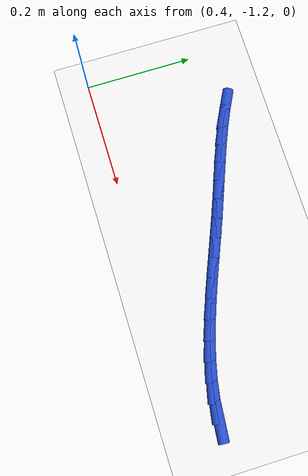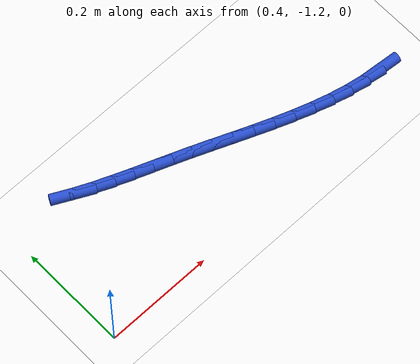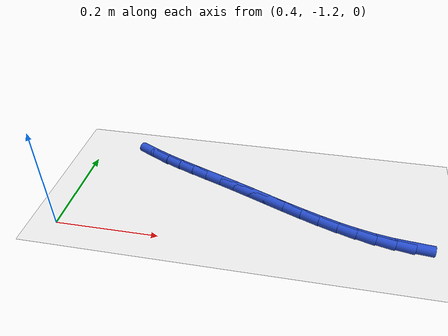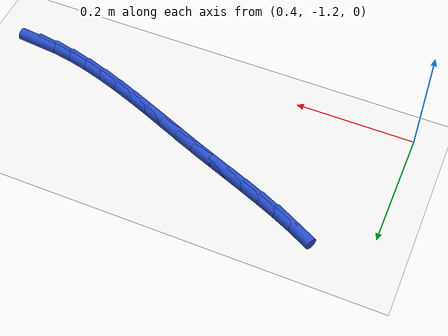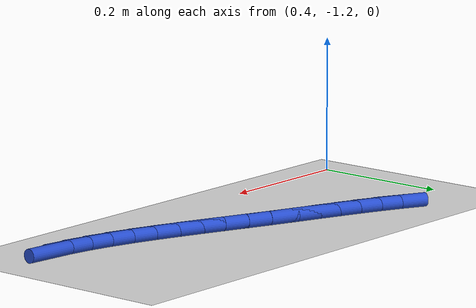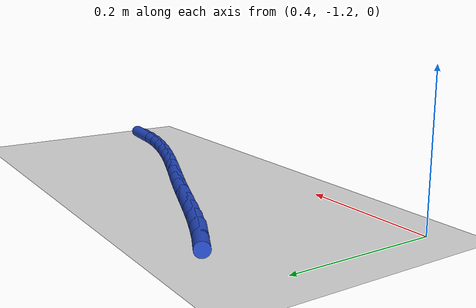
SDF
<sdf version="1.6">
 <world name="default">
  <model name="ground_plane">
   <static>1</static>
   <link name="link">
    <collision name="collision">
     <geometry><plane><normal>0 0 1</normal><size>100 100</size></plane></geometry>
     <surface><friction><ode><mu>100</mu><mu2>50</mu2></ode></friction></surface>
    </collision>
    <visual name="visual">
     <cast_shadows>0</cast_shadows>
     <geometry><plane><normal>0 0 1</normal><size>100 100</size></plane></geometry>
     <material>
      <script><uri>file://media/materials/scripts/gazebo.material</uri><name>Gazebo/WhiteGlow</name></script>
     </material>
    </visual>
   </link>
  </model>
  <model name="line">
   <link name="link_150">
    <pose>1.0516640370518295 -1.1515317887890502 0.01 0 1.57 -0.09297723242723342</pose>
    <collision name="collision">
     <geometry><cylinder><radius>0.01</radius><length>0.08</length></cylinder></geometry>
    </collision>
    <visual name="visual">
     <material>
      <script><name>Gazebo/Blue</name><uri>file://media/materials/scripts/gazebo.material</uri></script>
     </material>
     <geometry><cylinder><radius>0.01</radius><length>0.08</length></cylinder></geometry>
    </visual>
   </link>
   <link name="link_151">
    <pose>1.0192491957671876 -1.1485092317673014 0.01 0 1.57 -0.17097005044146746</pose>
    <collision name="collision">
     <geometry><cylinder><radius>0.01</radius><length>0.08</length></cylinder></geometry>
    </collision>
    <visual name="visual">
     <material>
      <script><name>Gazebo/Blue</name><uri>file://media/materials/scripts/gazebo.material</uri></script>
     </material>
     <geometry><cylinder><radius>0.01</radius><length>0.08</length></cylinder></geometry>
    </visual>
   </link>
   <link name="link_152">
    <pose>0.9862698554079243 -1.142815163217712 0.01 0 1.57 -0.23469139272830153</pose>
    <collision name="collision">
     <geometry><cylinder><radius>0.01</radius><length>0.08</length></cylinder></geometry>
    </collision>
    <visual name="visual">
     <material>
      <script><name>Gazebo/Blue</name><uri>file://media/materials/scripts/gazebo.material</uri></script>
     </material>
     <geometry><cylinder><radius>0.01</radius><length>0.08</length></cylinder></geometry>
    </visual>
   </link>
   <link name="link_153">
    <pose>0.9528266903518345 -1.134818988401021 0.01 0 1.57 -0.28566594127552614</pose>
    <collision name="collision">
     <geometry><cylinder><radius>0.01</radius><length>0.08</length></cylinder></geometry>
    </collision>
    <visual name="visual">
     <material>
      <script><name>Gazebo/Blue</name><uri>file://media/materials/scripts/gazebo.material</uri></script>
     </material>
     <geometry><cylinder><radius>0.01</radius><length>0.08</length></cylinder></geometry>
    </visual>
   </link>
   <link name="link_154">
    <pose>0.9190203749767144 -1.124890112577969 0.01 0 1.57 -0.3253365425913801</pose>
    <collision name="collision">
     <geometry><cylinder><radius>0.01</radius><length>0.08</length></cylinder></geometry>
    </collision>
    <visual name="visual">
     <material>
      <script><name>Gazebo/Blue</name><uri>file://media/materials/scripts/gazebo.material</uri></script>
     </material>
     <geometry><cylinder><radius>0.01</radius><length>0.08</length></cylinder></geometry>
    </visual>
   </link>
   <link name="link_155">
    <pose>0.8849515836603588 -1.1133979410092945 0.01 0 1.57 -0.35491281537799924</pose>
    <collision name="collision">
     <geometry><cylinder><radius>0.01</radius><length>0.08</length></cylinder></geometry>
    </collision>
    <visual name="visual">
     <material>
      <script><name>Gazebo/Blue</name><uri>file://media/materials/scripts/gazebo.material</uri></script>
     </material>
     <geometry><cylinder><radius>0.01</radius><length>0.08</length></cylinder></geometry>
    </visual>
   </link>
   <link name="link_156">
    <pose>0.8507209907805628 -1.1007118789557366 0.01 0 1.57 -0.37531343040777904</pose>
    <collision name="collision">
     <geometry><cylinder><radius>0.01</radius><length>0.08</length></cylinder></geometry>
    </collision>
    <visual name="visual">
     <material>
      <script><name>Gazebo/Blue</name><uri>file://media/materials/scripts/gazebo.material</uri></script>
     </material>
     <geometry><cylinder><radius>0.01</radius><length>0.08</length></cylinder></geometry>
    </visual>
   </link>
   <link name="link_157">
    <pose>0.8164292707151223 -1.0872013316780356 0.01 0 1.57 -0.3871520766410224</pose>
    <collision name="collision">
     <geometry><cylinder><radius>0.01</radius><length>0.08</length></cylinder></geometry>
    </collision>
    <visual name="visual">
     <material>
      <script><name>Gazebo/Blue</name><uri>file://media/materials/scripts/gazebo.material</uri></script>
     </material>
     <geometry><cylinder><radius>0.01</radius><length>0.08</length></cylinder></geometry>
    </visual>
   </link>
   <link name="link_158">
    <pose>0.7821770978418328 -1.0732357044369305 0.01 0 1.57 -0.39073748574353995</pose>
    <collision name="collision">
     <geometry><cylinder><radius>0.01</radius><length>0.08</length></cylinder></geometry>
    </collision>
    <visual name="visual">
     <material>
      <script><name>Gazebo/Blue</name><uri>file://media/materials/scripts/gazebo.material</uri></script>
     </material>
     <geometry><cylinder><radius>0.01</radius><length>0.08</length></cylinder></geometry>
    </visual>
   </link>
   <link name="link_159">
    <pose>0.7480651465384892 -1.0591844024931607 0.01 0 1.57 -0.38607157884977733</pose>
    <collision name="collision">
     <geometry><cylinder><radius>0.01</radius><length>0.08</length></cylinder></geometry>
    </collision>
    <visual name="visual">
     <material>
      <script><name>Gazebo/Blue</name><uri>file://media/materials/scripts/gazebo.material</uri></script>
     </material>
     <geometry><cylinder><radius>0.01</radius><length>0.08</length></cylinder></geometry>
    </visual>
   </link>
   <link name="link_160">
    <pose>0.7141940911828871 -1.0454168311074659 0.01 0 1.57 -0.3746275990224084</pose>
    <collision name="collision">
     <geometry><cylinder><radius>0.01</radius><length>0.08</length></cylinder></geometry>
    </collision>
    <visual name="visual">
     <material>
      <script><name>Gazebo/Blue</name><uri>file://media/materials/scripts/gazebo.material</uri></script>
     </material>
     <geometry><cylinder><radius>0.01</radius><length>0.08</length></cylinder></geometry>
    </visual>
   </link>
   <link name="link_161">
    <pose>0.6806659465416918 -1.0322336807271528 0.01 0 1.57 -0.3673178129201745</pose>
    <collision name="collision">
     <geometry><cylinder><radius>0.01</radius><length>0.08</length></cylinder></geometry>
    </collision>
    <visual name="visual">
     <material>
      <script><name>Gazebo/Blue</name><uri>file://media/materials/scripts/gazebo.material</uri></script>
     </material>
     <geometry><cylinder><radius>0.01</radius><length>0.08</length></cylinder></geometry>
    </visual>
   </link>
   <link name="link_162">
    <pose>0.6475910864827434 -1.0195071138620755 0.01 0 1.57 -0.3687712934288002</pose>
    <collision name="collision">
     <geometry><cylinder><radius>0.01</radius><length>0.08</length></cylinder></geometry>
    </collision>
    <visual name="visual">
     <material>
      <script><name>Gazebo/Blue</name><uri>file://media/materials/scripts/gazebo.material</uri></script>
     </material>
     <geometry><cylinder><radius>0.01</radius><length>0.08</length></cylinder></geometry>
    </visual>
   </link>
   <link name="link_163">
    <pose>0.6150831014879136 -1.00694439383649 0.01 0 1.57 -0.3794482356461036</pose>
    <collision name="collision">
     <geometry><cylinder><radius>0.01</radius><length>0.08</length></cylinder></geometry>
    </collision>
    <visual name="visual">
     <material>
      <script><name>Gazebo/Blue</name><uri>file://media/materials/scripts/gazebo.material</uri></script>
     </material>
     <geometry><cylinder><radius>0.01</radius><length>0.08</length></cylinder></geometry>
    </visual>
   </link>
   <link name="link_164">
    <pose>0.5832555887736066 -0.9942524387299069 0.01 0 1.57 -0.3998234669427387</pose>
    <collision name="collision">
     <geometry><cylinder><radius>0.01</radius><length>0.08</length></cylinder></geometry>
    </collision>
    <visual name="visual">
     <material>
      <script><name>Gazebo/Blue</name><uri>file://media/materials/scripts/gazebo.material</uri></script>
     </material>
     <geometry><cylinder><radius>0.01</radius><length>0.08</length></cylinder></geometry>
    </visual>
   </link>
   <link name="link_165">
    <pose>0.5522221455562275 -0.9811381666218372 0.01 0 1.57 -0.43036625112620625</pose>
    <collision name="collision">
     <geometry><cylinder><radius>0.01</radius><length>0.08</length></cylinder></geometry>
    </collision>
    <visual name="visual">
     <material>
      <script><name>Gazebo/Blue</name><uri>file://media/materials/scripts/gazebo.material</uri></script>
     </material>
     <geometry><cylinder><radius>0.01</radius><length>0.08</length></cylinder></geometry>
    </visual>
   </link>
   <link name="link_166">
    <pose>0.5220963690521806 -0.967308495591792 0.01 0 1.57 -0.4714751461628701</pose>
    <collision name="collision">
     <geometry><cylinder><radius>0.01</radius><length>0.08</length></cylinder></geometry>
    </collision>
    <visual name="visual">
     <material>
      <script><name>Gazebo/Blue</name><uri>file://media/materials/scripts/gazebo.material</uri></script>
     </material>
     <geometry><cylinder><radius>0.01</radius><length>0.08</length></cylinder></geometry>
    </visual>
   </link>
  </model>
 </world>
</sdf>
